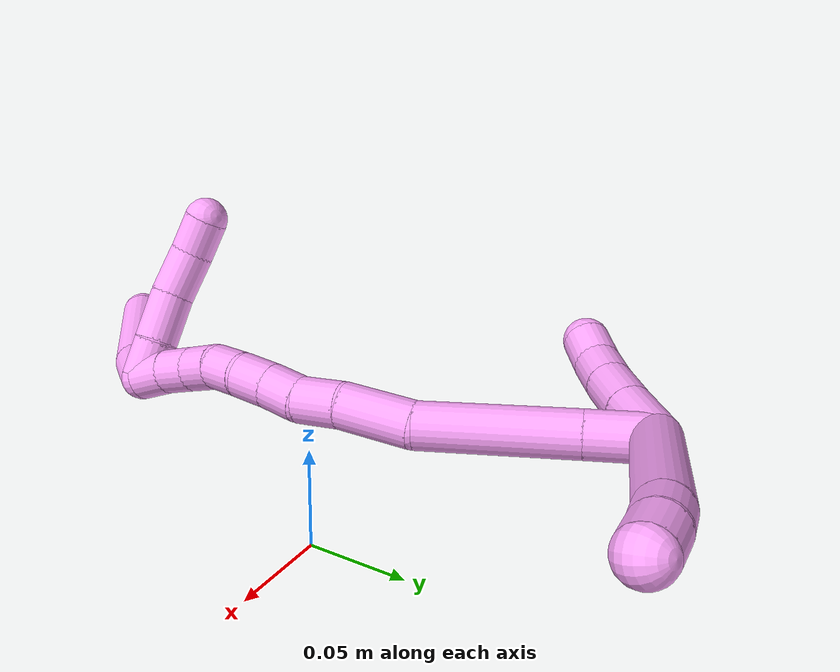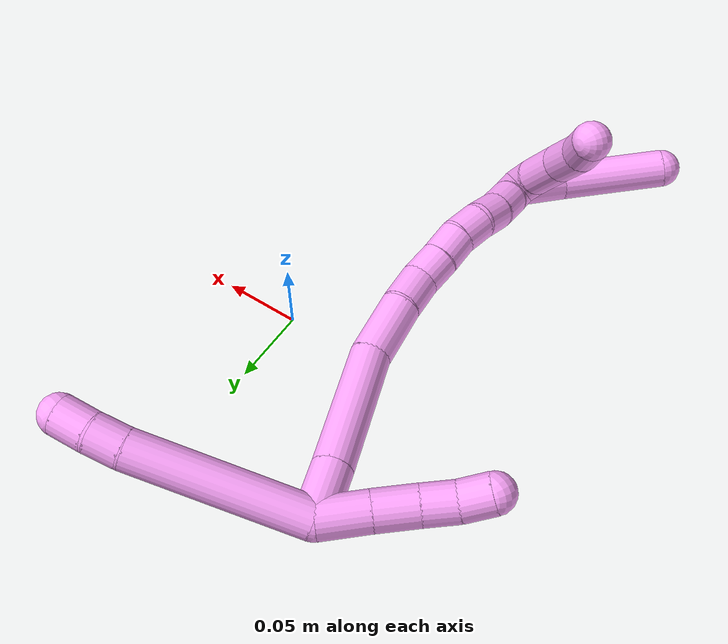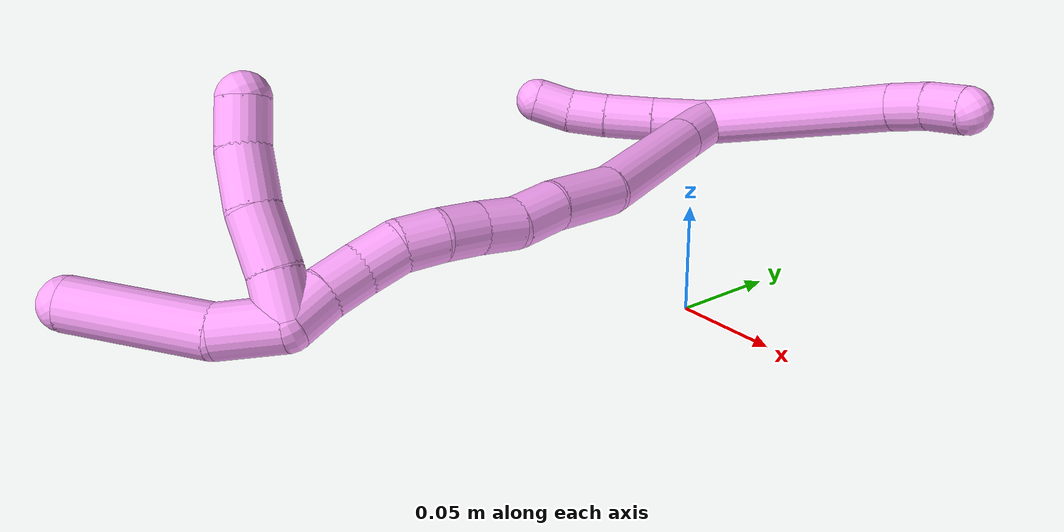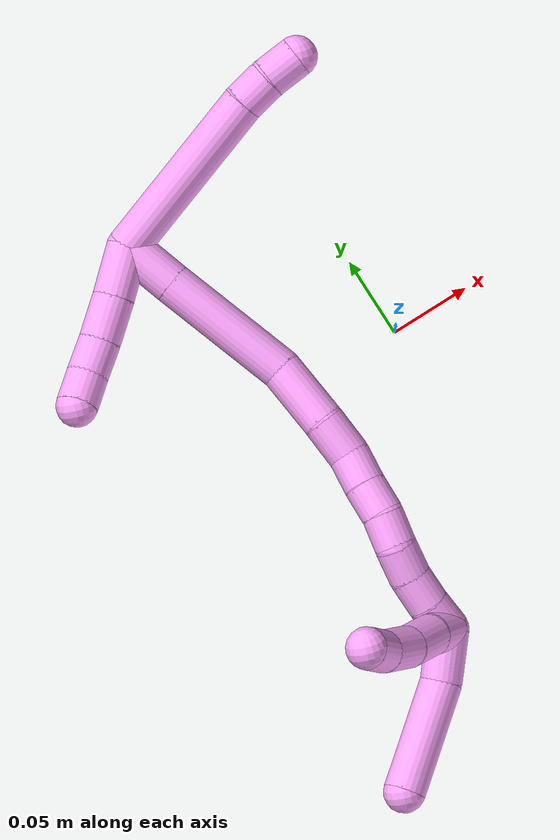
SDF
<sdf version="1.7">
 <world name="default">
  <model name="4">
   <static>0</static>
   <link name="4">
    <collision name="collision-cylinder-e_1_2_8">
     <pose>0.036591 -0.022987 0.033173 0.605985 0.736471 0.240078</pose>
     <geometry><cylinder><radius>0.0125</radius><length>0.108954</length></cylinder></geometry>
     <surface>
      <friction><ode><mu>1.16</mu><mu2>1.16</mu2><slip1>0</slip1><slip2>0</slip2></ode></friction>
      <contact><ode><kp>1e+06</kp><kd>1</kd><max_vel>0</max_vel><min_depth>0.001</min_depth></ode></contact>
     </surface>
    </collision>
    <visual name="visual-cylinder-e_1_2_8">
     <pose>0.036591 -0.022987 0.033173 0.605985 0.736471 0.240078</pose>
     <geometry><cylinder><radius>0.0125</radius><length>0.108954</length></cylinder></geometry>
     <material><ambient>1 0.65098 0.996078 1</ambient></material>
    </visual>
    <collision name="collision-cylinder-e_2_8_9">
     <pose>0.080506 -0.050621 0.071466 0.73682 0.814157 0.329863</pose>
     <geometry><cylinder><radius>0.0125</radius><length>0.020146</length></cylinder></geometry>
     <surface>
      <friction><ode><mu>1.16</mu><mu2>1.16</mu2><slip1>0</slip1><slip2>0</slip2></ode></friction>
      <contact><ode><kp>1e+06</kp><kd>1</kd><max_vel>0</max_vel><min_depth>0.001</min_depth></ode></contact>
     </surface>
    </collision>
    <visual name="visual-cylinder-e_2_8_9">
     <pose>0.080506 -0.050621 0.071466 0.73682 0.814157 0.329863</pose>
     <geometry><cylinder><radius>0.0125</radius><length>0.020146</length></cylinder></geometry>
     <material><ambient>1 0.65098 0.996078 1</ambient></material>
    </visual>
    <collision name="collision-cylinder-e_3_9_6">
     <pose>0.096355 -0.05971 0.080688 0.825449 0.953959 0.445072</pose>
     <geometry><cylinder><radius>0.0125</radius><length>0.0209</length></cylinder></geometry>
     <surface>
      <friction><ode><mu>1.16</mu><mu2>1.16</mu2><slip1>0</slip1><slip2>0</slip2></ode></friction>
      <contact><ode><kp>1e+06</kp><kd>1</kd><max_vel>0</max_vel><min_depth>0.001</min_depth></ode></contact>
     </surface>
    </collision>
    <visual name="visual-cylinder-e_3_9_6">
     <pose>0.096355 -0.05971 0.080688 0.825449 0.953959 0.445072</pose>
     <geometry><cylinder><radius>0.0125</radius><length>0.0209</length></cylinder></geometry>
     <material><ambient>1 0.65098 0.996078 1</ambient></material>
    </visual>
    <collision name="collision-cylinder-e_1_2_10">
     <pose>-0.009214 -0.000192 -0.012759 3.12654 -0.625399 -3.09504</pose>
     <geometry><cylinder><radius>0.0125</radius><length>0.03148</length></cylinder></geometry>
     <surface>
      <friction><ode><mu>1.16</mu><mu2>1.16</mu2><slip1>0</slip1><slip2>0</slip2></ode></friction>
      <contact><ode><kp>1e+06</kp><kd>1</kd><max_vel>0</max_vel><min_depth>0.001</min_depth></ode></contact>
     </surface>
    </collision>
    <visual name="visual-cylinder-e_1_2_10">
     <pose>-0.009214 -0.000192 -0.012759 3.12654 -0.625399 -3.09504</pose>
     <geometry><cylinder><radius>0.0125</radius><length>0.03148</length></cylinder></geometry>
     <material><ambient>1 0.65098 0.996078 1</ambient></material>
    </visual>
    <collision name="collision-cylinder-e_2_10_11">
     <pose>-0.026663 -0.000424 -0.036137 3.13787 -0.659621 -3.13073</pose>
     <geometry><cylinder><radius>0.0125</radius><length>0.026875</length></cylinder></geometry>
     <surface>
      <friction><ode><mu>1.16</mu><mu2>1.16</mu2><slip1>0</slip1><slip2>0</slip2></ode></friction>
      <contact><ode><kp>1e+06</kp><kd>1</kd><max_vel>0</max_vel><min_depth>0.001</min_depth></ode></contact>
     </surface>
    </collision>
    <visual name="visual-cylinder-e_2_10_11">
     <pose>-0.026663 -0.000424 -0.036137 3.13787 -0.659621 -3.13073</pose>
     <geometry><cylinder><radius>0.0125</radius><length>0.026875</length></cylinder></geometry>
     <material><ambient>1 0.65098 0.996078 1</ambient></material>
    </visual>
    <collision name="collision-cylinder-e_3_11_12">
     <pose>-0.04196 -0.00063 -0.054784 3.12085 -0.721346 -3.0866</pose>
     <geometry><cylinder><radius>0.0125</radius><length>0.021388</length></cylinder></geometry>
     <surface>
      <friction><ode><mu>1.16</mu><mu2>1.16</mu2><slip1>0</slip1><slip2>0</slip2></ode></friction>
      <contact><ode><kp>1e+06</kp><kd>1</kd><max_vel>0</max_vel><min_depth>0.001</min_depth></ode></contact>
     </surface>
    </collision>
    <visual name="visual-cylinder-e_3_11_12">
     <pose>-0.04196 -0.00063 -0.054784 3.12085 -0.721346 -3.0866</pose>
     <geometry><cylinder><radius>0.0125</radius><length>0.021388</length></cylinder></geometry>
     <material><ambient>1 0.65098 0.996078 1</ambient></material>
    </visual>
    <collision name="collision-cylinder-e_4_12_5">
     <pose>-0.056194 -0.002852 -0.069663 2.85007 -0.786729 -2.46157</pose>
     <geometry><cylinder><radius>0.0125</radius><length>0.020258</length></cylinder></geometry>
     <surface>
      <friction><ode><mu>1.16</mu><mu2>1.16</mu2><slip1>0</slip1><slip2>0</slip2></ode></friction>
      <contact><ode><kp>1e+06</kp><kd>1</kd><max_vel>0</max_vel><min_depth>0.001</min_depth></ode></contact>
     </surface>
    </collision>
    <visual name="visual-cylinder-e_4_12_5">
     <pose>-0.056194 -0.002852 -0.069663 2.85007 -0.786729 -2.46157</pose>
     <geometry><cylinder><radius>0.0125</radius><length>0.020258</length></cylinder></geometry>
     <material><ambient>1 0.65098 0.996078 1</ambient></material>
    </visual>
    <collision name="collision-cylinder-e_1_2_13">
     <pose>0.006712 -0.008104 -0.013143 2.58906 0.410034 1.26563</pose>
     <geometry><cylinder><radius>0.0125</radius><length>0.033673</length></cylinder></geometry>
     <surface>
      <friction><ode><mu>1.16</mu><mu2>1.16</mu2><slip1>0</slip1><slip2>0</slip2></ode></friction>
      <contact><ode><kp>1e+06</kp><kd>1</kd><max_vel>0</max_vel><min_depth>0.001</min_depth></ode></contact>
     </surface>
    </collision>
    <visual name="visual-cylinder-e_1_2_13">
     <pose>0.006712 -0.008104 -0.013143 2.58906 0.410034 1.26563</pose>
     <geometry><cylinder><radius>0.0125</radius><length>0.033673</length></cylinder></geometry>
     <material><ambient>1 0.65098 0.996078 1</ambient></material>
    </visual>
    <collision name="collision-cylinder-e_2_13_14">
     <pose>0.030162 -0.036209 -0.057689 2.57446 0.422507 1.26882</pose>
     <geometry><cylinder><radius>0.0125</radius><length>0.081642</length></cylinder></geometry>
     <surface>
      <friction><ode><mu>1.16</mu><mu2>1.16</mu2><slip1>0</slip1><slip2>0</slip2></ode></friction>
      <contact><ode><kp>1e+06</kp><kd>1</kd><max_vel>0</max_vel><min_depth>0.001</min_depth></ode></contact>
     </surface>
    </collision>
    <visual name="visual-cylinder-e_2_13_14">
     <pose>0.030162 -0.036209 -0.057689 2.57446 0.422507 1.26882</pose>
     <geometry><cylinder><radius>0.0125</radius><length>0.081642</length></cylinder></geometry>
     <material><ambient>1 0.65098 0.996078 1</ambient></material>
    </visual>
    <collision name="collision-cylinder-e_3_14_15">
     <pose>0.050173 -0.066463 -0.105644 2.58703 0.1665 0.570377</pose>
     <geometry><cylinder><radius>0.0125</radius><length>0.039486</length></cylinder></geometry>
     <surface>
      <friction><ode><mu>1.16</mu><mu2>1.16</mu2><slip1>0</slip1><slip2>0</slip2></ode></friction>
      <contact><ode><kp>1e+06</kp><kd>1</kd><max_vel>0</max_vel><min_depth>0.001</min_depth></ode></contact>
     </surface>
    </collision>
    <visual name="visual-cylinder-e_3_14_15">
     <pose>0.050173 -0.066463 -0.105644 2.58703 0.1665 0.570377</pose>
     <geometry><cylinder><radius>0.0125</radius><length>0.039486</length></cylinder></geometry>
     <material><ambient>1 0.65098 0.996078 1</ambient></material>
    </visual>
    <collision name="collision-cylinder-e_4_15_16">
     <pose>0.056161 -0.081485 -0.133219 2.73321 0.222437 0.989194</pose>
     <geometry><cylinder><radius>0.0125</radius><length>0.024628</length></cylinder></geometry>
     <surface>
      <friction><ode><mu>1.16</mu><mu2>1.16</mu2><slip1>0</slip1><slip2>0</slip2></ode></friction>
      <contact><ode><kp>1e+06</kp><kd>1</kd><max_vel>0</max_vel><min_depth>0.001</min_depth></ode></contact>
     </surface>
    </collision>
    <visual name="visual-cylinder-e_4_15_16">
     <pose>0.056161 -0.081485 -0.133219 2.73321 0.222437 0.989194</pose>
     <geometry><cylinder><radius>0.0125</radius><length>0.024628</length></cylinder></geometry>
     <material><ambient>1 0.65098 0.996078 1</ambient></material>
    </visual>
    <collision name="collision-cylinder-e_5_16_17">
     <pose>0.05858 -0.091024 -0.153266 2.65542 -0.029142 -0.117385</pose>
     <geometry><cylinder><radius>0.0125</radius><length>0.020423</length></cylinder></geometry>
     <surface>
      <friction><ode><mu>1.16</mu><mu2>1.16</mu2><slip1>0</slip1><slip2>0</slip2></ode></friction>
      <contact><ode><kp>1e+06</kp><kd>1</kd><max_vel>0</max_vel><min_depth>0.001</min_depth></ode></contact>
     </surface>
    </collision>
    <visual name="visual-cylinder-e_5_16_17">
     <pose>0.05858 -0.091024 -0.153266 2.65542 -0.029142 -0.117385</pose>
     <geometry><cylinder><radius>0.0125</radius><length>0.020423</length></cylinder></geometry>
     <material><ambient>1 0.65098 0.996078 1</ambient></material>
    </visual>
    <collision name="collision-cylinder-e_6_17_18">
     <pose>0.058707 -0.100571 -0.171068 2.64316 0.042462 0.166479</pose>
     <geometry><cylinder><radius>0.0125</radius><length>0.020007</length></cylinder></geometry>
     <surface>
      <friction><ode><mu>1.16</mu><mu2>1.16</mu2><slip1>0</slip1><slip2>0</slip2></ode></friction>
      <contact><ode><kp>1e+06</kp><kd>1</kd><max_vel>0</max_vel><min_depth>0.001</min_depth></ode></contact>
     </surface>
    </collision>
    <visual name="visual-cylinder-e_6_17_18">
     <pose>0.058707 -0.100571 -0.171068 2.64316 0.042462 0.166479</pose>
     <geometry><cylinder><radius>0.0125</radius><length>0.020007</length></cylinder></geometry>
     <material><ambient>1 0.65098 0.996078 1</ambient></material>
    </visual>
    <collision name="collision-cylinder-e_7_18_19">
     <pose>0.058905 -0.108411 -0.189433 2.83243 -0.022574 -0.144622</pose>
     <geometry><cylinder><radius>0.0125</radius><length>0.020133</length></cylinder></geometry>
     <surface>
      <friction><ode><mu>1.16</mu><mu2>1.16</mu2><slip1>0</slip1><slip2>0</slip2></ode></friction>
      <contact><ode><kp>1e+06</kp><kd>1</kd><max_vel>0</max_vel><min_depth>0.001</min_depth></ode></contact>
     </surface>
    </collision>
    <visual name="visual-cylinder-e_7_18_19">
     <pose>0.058905 -0.108411 -0.189433 2.83243 -0.022574 -0.144622</pose>
     <geometry><cylinder><radius>0.0125</radius><length>0.020133</length></cylinder></geometry>
     <material><ambient>1 0.65098 0.996078 1</ambient></material>
    </visual>
    <collision name="collision-cylinder-e_8_19_20">
     <pose>0.060304 -0.112368 -0.208848 3.0508 0.163364 2.12835</pose>
     <geometry><cylinder><radius>0.0125</radius><length>0.020004</length></cylinder></geometry>
     <surface>
      <friction><ode><mu>1.16</mu><mu2>1.16</mu2><slip1>0</slip1><slip2>0</slip2></ode></friction>
      <contact><ode><kp>1e+06</kp><kd>1</kd><max_vel>0</max_vel><min_depth>0.001</min_depth></ode></contact>
     </surface>
    </collision>
    <visual name="visual-cylinder-e_8_19_20">
     <pose>0.060304 -0.112368 -0.208848 3.0508 0.163364 2.12835</pose>
     <geometry><cylinder><radius>0.0125</radius><length>0.020004</length></cylinder></geometry>
     <material><ambient>1 0.65098 0.996078 1</ambient></material>
    </visual>
    <collision name="collision-cylinder-e_9_20_21">
     <pose>0.064629 -0.115088 -0.228132 2.95089 0.273115 1.92548</pose>
     <geometry><cylinder><radius>0.0125</radius><length>0.020003</length></cylinder></geometry>
     <surface>
      <friction><ode><mu>1.16</mu><mu2>1.16</mu2><slip1>0</slip1><slip2>0</slip2></ode></friction>
      <contact><ode><kp>1e+06</kp><kd>1</kd><max_vel>0</max_vel><min_depth>0.001</min_depth></ode></contact>
     </surface>
    </collision>
    <visual name="visual-cylinder-e_9_20_21">
     <pose>0.064629 -0.115088 -0.228132 2.95089 0.273115 1.92548</pose>
     <geometry><cylinder><radius>0.0125</radius><length>0.020003</length></cylinder></geometry>
     <material><ambient>1 0.65098 0.996078 1</ambient></material>
    </visual>
    <collision name="collision-cylinder-e_10_21_1">
     <pose>0.071084 -0.118272 -0.246757 2.99453 0.385143 2.41917</pose>
     <geometry><cylinder><radius>0.0125</radius><length>0.020002</length></cylinder></geometry>
     <surface>
      <friction><ode><mu>1.16</mu><mu2>1.16</mu2><slip1>0</slip1><slip2>0</slip2></ode></friction>
      <contact><ode><kp>1e+06</kp><kd>1</kd><max_vel>0</max_vel><min_depth>0.001</min_depth></ode></contact>
     </surface>
    </collision>
    <visual name="visual-cylinder-e_10_21_1">
     <pose>0.071084 -0.118272 -0.246757 2.99453 0.385143 2.41917</pose>
     <geometry><cylinder><radius>0.0125</radius><length>0.020002</length></cylinder></geometry>
     <material><ambient>1 0.65098 0.996078 1</ambient></material>
    </visual>
    <collision name="collision-cylinder-e_1_1_22">
     <pose>0.068126 -0.119366 -0.270276 -3.12318 -0.437595 3.05884</pose>
     <geometry><cylinder><radius>0.0125</radius><length>0.031693</length></cylinder></geometry>
     <surface>
      <friction><ode><mu>1.16</mu><mu2>1.16</mu2><slip1>0</slip1><slip2>0</slip2></ode></friction>
      <contact><ode><kp>1e+06</kp><kd>1</kd><max_vel>0</max_vel><min_depth>0.001</min_depth></ode></contact>
     </surface>
    </collision>
    <visual name="visual-cylinder-e_1_1_22">
     <pose>0.068126 -0.119366 -0.270276 -3.12318 -0.437595 3.05884</pose>
     <geometry><cylinder><radius>0.0125</radius><length>0.031693</length></cylinder></geometry>
     <material><ambient>1 0.65098 0.996078 1</ambient></material>
    </visual>
    <collision name="collision-cylinder-e_2_22_4">
     <pose>0.038864 -0.120577 -0.310239 3.08405 -0.721015 -2.98921</pose>
     <geometry><cylinder><radius>0.0125</radius><length>0.068307</length></cylinder></geometry>
     <surface>
      <friction><ode><mu>1.16</mu><mu2>1.16</mu2><slip1>0</slip1><slip2>0</slip2></ode></friction>
      <contact><ode><kp>1e+06</kp><kd>1</kd><max_vel>0</max_vel><min_depth>0.001</min_depth></ode></contact>
     </surface>
    </collision>
    <visual name="visual-cylinder-e_2_22_4">
     <pose>0.038864 -0.120577 -0.310239 3.08405 -0.721015 -2.98921</pose>
     <geometry><cylinder><radius>0.0125</radius><length>0.068307</length></cylinder></geometry>
     <material><ambient>1 0.65098 0.996078 1</ambient></material>
    </visual>
    <collision name="collision-cylinder-e_1_1_23">
     <pose>0.065208 -0.124839 -0.253586 1.14874 -1.03568 -0.706441</pose>
     <geometry><cylinder><radius>0.0125</radius><length>0.022397</length></cylinder></geometry>
     <surface>
      <friction><ode><mu>1.16</mu><mu2>1.16</mu2><slip1>0</slip1><slip2>0</slip2></ode></friction>
      <contact><ode><kp>1e+06</kp><kd>1</kd><max_vel>0</max_vel><min_depth>0.001</min_depth></ode></contact>
     </surface>
    </collision>
    <visual name="visual-cylinder-e_1_1_23">
     <pose>0.065208 -0.124839 -0.253586 1.14874 -1.03568 -0.706441</pose>
     <geometry><cylinder><radius>0.0125</radius><length>0.022397</length></cylinder></geometry>
     <material><ambient>1 0.65098 0.996078 1</ambient></material>
    </visual>
    <collision name="collision-cylinder-e_2_23_24">
     <pose>0.042845 -0.136274 -0.249495 1.2964 -1.10078 -0.87011</pose>
     <geometry><cylinder><radius>0.0125</radius><length>0.028557</length></cylinder></geometry>
     <surface>
      <friction><ode><mu>1.16</mu><mu2>1.16</mu2><slip1>0</slip1><slip2>0</slip2></ode></friction>
      <contact><ode><kp>1e+06</kp><kd>1</kd><max_vel>0</max_vel><min_depth>0.001</min_depth></ode></contact>
     </surface>
    </collision>
    <visual name="visual-cylinder-e_2_23_24">
     <pose>0.042845 -0.136274 -0.249495 1.2964 -1.10078 -0.87011</pose>
     <geometry><cylinder><radius>0.0125</radius><length>0.028557</length></cylinder></geometry>
     <material><ambient>1 0.65098 0.996078 1</ambient></material>
    </visual>
    <collision name="collision-cylinder-e_3_24_25">
     <pose>0.018093 -0.147841 -0.244069 0.968393 -1.07616 -0.608327</pose>
     <geometry><cylinder><radius>0.0125</radius><length>0.027316</length></cylinder></geometry>
     <surface>
      <friction><ode><mu>1.16</mu><mu2>1.16</mu2><slip1>0</slip1><slip2>0</slip2></ode></friction>
      <contact><ode><kp>1e+06</kp><kd>1</kd><max_vel>0</max_vel><min_depth>0.001</min_depth></ode></contact>
     </surface>
    </collision>
    <visual name="visual-cylinder-e_3_24_25">
     <pose>0.018093 -0.147841 -0.244069 0.968393 -1.07616 -0.608327</pose>
     <geometry><cylinder><radius>0.0125</radius><length>0.027316</length></cylinder></geometry>
     <material><ambient>1 0.65098 0.996078 1</ambient></material>
    </visual>
    <collision name="collision-cylinder-e_4_25_3">
     <pose>-0.00225 -0.15831 -0.235652 0.824277 -0.872573 -0.402159</pose>
     <geometry><cylinder><radius>0.0125</radius><length>0.02173</length></cylinder></geometry>
     <surface>
      <friction><ode><mu>1.16</mu><mu2>1.16</mu2><slip1>0</slip1><slip2>0</slip2></ode></friction>
      <contact><ode><kp>1e+06</kp><kd>1</kd><max_vel>0</max_vel><min_depth>0.001</min_depth></ode></contact>
     </surface>
    </collision>
    <visual name="visual-cylinder-e_4_25_3">
     <pose>-0.00225 -0.15831 -0.235652 0.824277 -0.872573 -0.402159</pose>
     <geometry><cylinder><radius>0.0125</radius><length>0.02173</length></cylinder></geometry>
     <material><ambient>1 0.65098 0.996078 1</ambient></material>
    </visual>
    <collision name="collision-sphere-3">
     <pose>-0.010572 -0.163437 -0.230909 0 -0 0</pose>
     <geometry><sphere><radius>0.0125</radius></sphere></geometry>
     <surface>
      <friction><ode><mu>1.16</mu><mu2>1.16</mu2><slip1>0</slip1><slip2>0</slip2></ode></friction>
      <contact><ode><kp>1e+06</kp><kd>1</kd><max_vel>0</max_vel><min_depth>0.001</min_depth></ode></contact>
     </surface>
    </collision>
    <visual name="visual-sphere-3">
     <pose>-0.010572 -0.163437 -0.230909 0 -0 0</pose>
     <geometry><sphere><radius>0.0125</radius></sphere></geometry>
     <material><ambient>1 0.65098 0.996078 1</ambient></material>
    </visual>
    <collision name="collision-sphere-25">
     <pose>0.006073 -0.153183 -0.240395 0 -0 0</pose>
     <geometry><sphere><radius>0.0125</radius></sphere></geometry>
     <surface>
      <friction><ode><mu>1.16</mu><mu2>1.16</mu2><slip1>0</slip1><slip2>0</slip2></ode></friction>
      <contact><ode><kp>1e+06</kp><kd>1</kd><max_vel>0</max_vel><min_depth>0.001</min_depth></ode></contact>
     </surface>
    </collision>
    <visual name="visual-sphere-25">
     <pose>0.006073 -0.153183 -0.240395 0 -0 0</pose>
     <geometry><sphere><radius>0.0125</radius></sphere></geometry>
     <material><ambient>1 0.65098 0.996078 1</ambient></material>
    </visual>
    <collision name="collision-sphere-24">
     <pose>0.030114 -0.142498 -0.247742 0 -0 0</pose>
     <geometry><sphere><radius>0.0125</radius></sphere></geometry>
     <surface>
      <friction><ode><mu>1.16</mu><mu2>1.16</mu2><slip1>0</slip1><slip2>0</slip2></ode></friction>
      <contact><ode><kp>1e+06</kp><kd>1</kd><max_vel>0</max_vel><min_depth>0.001</min_depth></ode></contact>
     </surface>
    </collision>
    <visual name="visual-sphere-24">
     <pose>0.030114 -0.142498 -0.247742 0 -0 0</pose>
     <geometry><sphere><radius>0.0125</radius></sphere></geometry>
     <material><ambient>1 0.65098 0.996078 1</ambient></material>
    </visual>
    <collision name="collision-sphere-23">
     <pose>0.055575 -0.130049 -0.251247 0 -0 0</pose>
     <geometry><sphere><radius>0.0125</radius></sphere></geometry>
     <surface>
      <friction><ode><mu>1.16</mu><mu2>1.16</mu2><slip1>0</slip1><slip2>0</slip2></ode></friction>
      <contact><ode><kp>1e+06</kp><kd>1</kd><max_vel>0</max_vel><min_depth>0.001</min_depth></ode></contact>
     </surface>
    </collision>
    <visual name="visual-sphere-23">
     <pose>0.055575 -0.130049 -0.251247 0 -0 0</pose>
     <geometry><sphere><radius>0.0125</radius></sphere></geometry>
     <material><ambient>1 0.65098 0.996078 1</ambient></material>
    </visual>
    <collision name="collision-sphere-4">
     <pose>0.016318 -0.122052 -0.33585 0 -0 0</pose>
     <geometry><sphere><radius>0.0125</radius></sphere></geometry>
     <surface>
      <friction><ode><mu>1.16</mu><mu2>1.16</mu2><slip1>0</slip1><slip2>0</slip2></ode></friction>
      <contact><ode><kp>1e+06</kp><kd>1</kd><max_vel>0</max_vel><min_depth>0.001</min_depth></ode></contact>
     </surface>
    </collision>
    <visual name="visual-sphere-4">
     <pose>0.016318 -0.122052 -0.33585 0 -0 0</pose>
     <geometry><sphere><radius>0.0125</radius></sphere></geometry>
     <material><ambient>1 0.65098 0.996078 1</ambient></material>
    </visual>
    <collision name="collision-sphere-22">
     <pose>0.061411 -0.119101 -0.284627 0 -0 0</pose>
     <geometry><sphere><radius>0.0125</radius></sphere></geometry>
     <surface>
      <friction><ode><mu>1.16</mu><mu2>1.16</mu2><slip1>0</slip1><slip2>0</slip2></ode></friction>
      <contact><ode><kp>1e+06</kp><kd>1</kd><max_vel>0</max_vel><min_depth>0.001</min_depth></ode></contact>
     </surface>
    </collision>
    <visual name="visual-sphere-22">
     <pose>0.061411 -0.119101 -0.284627 0 -0 0</pose>
     <geometry><sphere><radius>0.0125</radius></sphere></geometry>
     <material><ambient>1 0.65098 0.996078 1</ambient></material>
    </visual>
    <collision name="collision-sphere-1">
     <pose>0.074841 -0.11963 -0.255925 0 -0 0</pose>
     <geometry><sphere><radius>0.0125</radius></sphere></geometry>
     <surface>
      <friction><ode><mu>1.16</mu><mu2>1.16</mu2><slip1>0</slip1><slip2>0</slip2></ode></friction>
      <contact><ode><kp>1e+06</kp><kd>1</kd><max_vel>0</max_vel><min_depth>0.001</min_depth></ode></contact>
     </surface>
    </collision>
    <visual name="visual-sphere-1">
     <pose>0.074841 -0.11963 -0.255925 0 -0 0</pose>
     <geometry><sphere><radius>0.0125</radius></sphere></geometry>
     <material><ambient>1 0.65098 0.996078 1</ambient></material>
    </visual>
    <collision name="collision-sphere-21">
     <pose>0.067326 -0.116913 -0.237588 0 -0 0</pose>
     <geometry><sphere><radius>0.0125</radius></sphere></geometry>
     <surface>
      <friction><ode><mu>1.16</mu><mu2>1.16</mu2><slip1>0</slip1><slip2>0</slip2></ode></friction>
      <contact><ode><kp>1e+06</kp><kd>1</kd><max_vel>0</max_vel><min_depth>0.001</min_depth></ode></contact>
     </surface>
    </collision>
    <visual name="visual-sphere-21">
     <pose>0.067326 -0.116913 -0.237588 0 -0 0</pose>
     <geometry><sphere><radius>0.0125</radius></sphere></geometry>
     <material><ambient>1 0.65098 0.996078 1</ambient></material>
    </visual>
    <collision name="collision-sphere-11">
     <pose>-0.034898 -0.000463 -0.046755 0 -0 0</pose>
     <geometry><sphere><radius>0.0125</radius></sphere></geometry>
     <surface>
      <friction><ode><mu>1.16</mu><mu2>1.16</mu2><slip1>0</slip1><slip2>0</slip2></ode></friction>
      <contact><ode><kp>1e+06</kp><kd>1</kd><max_vel>0</max_vel><min_depth>0.001</min_depth></ode></contact>
     </surface>
    </collision>
    <visual name="visual-sphere-11">
     <pose>-0.034898 -0.000463 -0.046755 0 -0 0</pose>
     <geometry><sphere><radius>0.0125</radius></sphere></geometry>
     <material><ambient>1 0.65098 0.996078 1</ambient></material>
    </visual>
    <collision name="collision-sphere-10">
     <pose>-0.018429 -0.000384 -0.025519 0 -0 0</pose>
     <geometry><sphere><radius>0.0125</radius></sphere></geometry>
     <surface>
      <friction><ode><mu>1.16</mu><mu2>1.16</mu2><slip1>0</slip1><slip2>0</slip2></ode></friction>
      <contact><ode><kp>1e+06</kp><kd>1</kd><max_vel>0</max_vel><min_depth>0.001</min_depth></ode></contact>
     </surface>
    </collision>
    <visual name="visual-sphere-10">
     <pose>-0.018429 -0.000384 -0.025519 0 -0 0</pose>
     <geometry><sphere><radius>0.0125</radius></sphere></geometry>
     <material><ambient>1 0.65098 0.996078 1</ambient></material>
    </visual>
    <collision name="collision-sphere-6">
     <pose>0.10488 -0.064152 0.084787 0 -0 0</pose>
     <geometry><sphere><radius>0.0125</radius></sphere></geometry>
     <surface>
      <friction><ode><mu>1.16</mu><mu2>1.16</mu2><slip1>0</slip1><slip2>0</slip2></ode></friction>
      <contact><ode><kp>1e+06</kp><kd>1</kd><max_vel>0</max_vel><min_depth>0.001</min_depth></ode></contact>
     </surface>
    </collision>
    <visual name="visual-sphere-6">
     <pose>0.10488 -0.064152 0.084787 0 -0 0</pose>
     <geometry><sphere><radius>0.0125</radius></sphere></geometry>
     <material><ambient>1 0.65098 0.996078 1</ambient></material>
    </visual>
    <collision name="collision-sphere-9">
     <pose>0.087831 -0.055267 0.076588 0 -0 0</pose>
     <geometry><sphere><radius>0.0125</radius></sphere></geometry>
     <surface>
      <friction><ode><mu>1.16</mu><mu2>1.16</mu2><slip1>0</slip1><slip2>0</slip2></ode></friction>
      <contact><ode><kp>1e+06</kp><kd>1</kd><max_vel>0</max_vel><min_depth>0.001</min_depth></ode></contact>
     </surface>
    </collision>
    <visual name="visual-sphere-9">
     <pose>0.087831 -0.055267 0.076588 0 -0 0</pose>
     <geometry><sphere><radius>0.0125</radius></sphere></geometry>
     <material><ambient>1 0.65098 0.996078 1</ambient></material>
    </visual>
    <collision name="collision-sphere-2">
     <geometry><sphere><radius>0.0125</radius></sphere></geometry>
     <surface>
      <friction><ode><mu>1.16</mu><mu2>1.16</mu2><slip1>0</slip1><slip2>0</slip2></ode></friction>
      <contact><ode><kp>1e+06</kp><kd>1</kd><max_vel>0</max_vel><min_depth>0.001</min_depth></ode></contact>
     </surface>
    </collision>
    <visual name="visual-sphere-2">
     <geometry><sphere><radius>0.0125</radius></sphere></geometry>
     <material><ambient>1 0.65098 0.996078 1</ambient></material>
    </visual>
    <collision name="collision-sphere-19">
     <pose>0.058678 -0.111473 -0.19902 0 -0 0</pose>
     <geometry><sphere><radius>0.0125</radius></sphere></geometry>
     <surface>
      <friction><ode><mu>1.16</mu><mu2>1.16</mu2><slip1>0</slip1><slip2>0</slip2></ode></friction>
      <contact><ode><kp>1e+06</kp><kd>1</kd><max_vel>0</max_vel><min_depth>0.001</min_depth></ode></contact>
     </surface>
    </collision>
    <visual name="visual-sphere-19">
     <pose>0.058678 -0.111473 -0.19902 0 -0 0</pose>
     <geometry><sphere><radius>0.0125</radius></sphere></geometry>
     <material><ambient>1 0.65098 0.996078 1</ambient></material>
    </visual>
    <collision name="collision-sphere-8">
     <pose>0.073182 -0.045975 0.066345 0 -0 0</pose>
     <geometry><sphere><radius>0.0125</radius></sphere></geometry>
     <surface>
      <friction><ode><mu>1.16</mu><mu2>1.16</mu2><slip1>0</slip1><slip2>0</slip2></ode></friction>
      <contact><ode><kp>1e+06</kp><kd>1</kd><max_vel>0</max_vel><min_depth>0.001</min_depth></ode></contact>
     </surface>
    </collision>
    <visual name="visual-sphere-8">
     <pose>0.073182 -0.045975 0.066345 0 -0 0</pose>
     <geometry><sphere><radius>0.0125</radius></sphere></geometry>
     <material><ambient>1 0.65098 0.996078 1</ambient></material>
    </visual>
    <collision name="collision-sphere-12">
     <pose>-0.049022 -0.000796 -0.062812 0 -0 0</pose>
     <geometry><sphere><radius>0.0125</radius></sphere></geometry>
     <surface>
      <friction><ode><mu>1.16</mu><mu2>1.16</mu2><slip1>0</slip1><slip2>0</slip2></ode></friction>
      <contact><ode><kp>1e+06</kp><kd>1</kd><max_vel>0</max_vel><min_depth>0.001</min_depth></ode></contact>
     </surface>
    </collision>
    <visual name="visual-sphere-12">
     <pose>-0.049022 -0.000796 -0.062812 0 -0 0</pose>
     <geometry><sphere><radius>0.0125</radius></sphere></geometry>
     <material><ambient>1 0.65098 0.996078 1</ambient></material>
    </visual>
    <collision name="collision-sphere-5">
     <pose>-0.063366 -0.004908 -0.076514 0 -0 0</pose>
     <geometry><sphere><radius>0.0125</radius></sphere></geometry>
     <surface>
      <friction><ode><mu>1.16</mu><mu2>1.16</mu2><slip1>0</slip1><slip2>0</slip2></ode></friction>
      <contact><ode><kp>1e+06</kp><kd>1</kd><max_vel>0</max_vel><min_depth>0.001</min_depth></ode></contact>
     </surface>
    </collision>
    <visual name="visual-sphere-5">
     <pose>-0.063366 -0.004908 -0.076514 0 -0 0</pose>
     <geometry><sphere><radius>0.0125</radius></sphere></geometry>
     <material><ambient>1 0.65098 0.996078 1</ambient></material>
    </visual>
    <collision name="collision-sphere-13">
     <pose>0.013424 -0.016208 -0.026287 0 -0 0</pose>
     <geometry><sphere><radius>0.0125</radius></sphere></geometry>
     <surface>
      <friction><ode><mu>1.16</mu><mu2>1.16</mu2><slip1>0</slip1><slip2>0</slip2></ode></friction>
      <contact><ode><kp>1e+06</kp><kd>1</kd><max_vel>0</max_vel><min_depth>0.001</min_depth></ode></contact>
     </surface>
    </collision>
    <visual name="visual-sphere-13">
     <pose>0.013424 -0.016208 -0.026287 0 -0 0</pose>
     <geometry><sphere><radius>0.0125</radius></sphere></geometry>
     <material><ambient>1 0.65098 0.996078 1</ambient></material>
    </visual>
    <collision name="collision-sphere-14">
     <pose>0.046901 -0.056211 -0.089092 0 -0 0</pose>
     <geometry><sphere><radius>0.0125</radius></sphere></geometry>
     <surface>
      <friction><ode><mu>1.16</mu><mu2>1.16</mu2><slip1>0</slip1><slip2>0</slip2></ode></friction>
      <contact><ode><kp>1e+06</kp><kd>1</kd><max_vel>0</max_vel><min_depth>0.001</min_depth></ode></contact>
     </surface>
    </collision>
    <visual name="visual-sphere-14">
     <pose>0.046901 -0.056211 -0.089092 0 -0 0</pose>
     <geometry><sphere><radius>0.0125</radius></sphere></geometry>
     <material><ambient>1 0.65098 0.996078 1</ambient></material>
    </visual>
    <collision name="collision-sphere-15">
     <pose>0.053445 -0.076715 -0.122196 0 -0 0</pose>
     <geometry><sphere><radius>0.0125</radius></sphere></geometry>
     <surface>
      <friction><ode><mu>1.16</mu><mu2>1.16</mu2><slip1>0</slip1><slip2>0</slip2></ode></friction>
      <contact><ode><kp>1e+06</kp><kd>1</kd><max_vel>0</max_vel><min_depth>0.001</min_depth></ode></contact>
     </surface>
    </collision>
    <visual name="visual-sphere-15">
     <pose>0.053445 -0.076715 -0.122196 0 -0 0</pose>
     <geometry><sphere><radius>0.0125</radius></sphere></geometry>
     <material><ambient>1 0.65098 0.996078 1</ambient></material>
    </visual>
    <collision name="collision-sphere-16">
     <pose>0.058878 -0.086255 -0.144242 0 -0 0</pose>
     <geometry><sphere><radius>0.0125</radius></sphere></geometry>
     <surface>
      <friction><ode><mu>1.16</mu><mu2>1.16</mu2><slip1>0</slip1><slip2>0</slip2></ode></friction>
      <contact><ode><kp>1e+06</kp><kd>1</kd><max_vel>0</max_vel><min_depth>0.001</min_depth></ode></contact>
     </surface>
    </collision>
    <visual name="visual-sphere-16">
     <pose>0.058878 -0.086255 -0.144242 0 -0 0</pose>
     <geometry><sphere><radius>0.0125</radius></sphere></geometry>
     <material><ambient>1 0.65098 0.996078 1</ambient></material>
    </visual>
    <collision name="collision-sphere-17">
     <pose>0.058283 -0.095793 -0.16229 0 -0 0</pose>
     <geometry><sphere><radius>0.0125</radius></sphere></geometry>
     <surface>
      <friction><ode><mu>1.16</mu><mu2>1.16</mu2><slip1>0</slip1><slip2>0</slip2></ode></friction>
      <contact><ode><kp>1e+06</kp><kd>1</kd><max_vel>0</max_vel><min_depth>0.001</min_depth></ode></contact>
     </surface>
    </collision>
    <visual name="visual-sphere-17">
     <pose>0.058283 -0.095793 -0.16229 0 -0 0</pose>
     <geometry><sphere><radius>0.0125</radius></sphere></geometry>
     <material><ambient>1 0.65098 0.996078 1</ambient></material>
    </visual>
    <collision name="collision-sphere-18">
     <pose>0.059132 -0.105349 -0.179847 0 -0 0</pose>
     <geometry><sphere><radius>0.0125</radius></sphere></geometry>
     <surface>
      <friction><ode><mu>1.16</mu><mu2>1.16</mu2><slip1>0</slip1><slip2>0</slip2></ode></friction>
      <contact><ode><kp>1e+06</kp><kd>1</kd><max_vel>0</max_vel><min_depth>0.001</min_depth></ode></contact>
     </surface>
    </collision>
    <visual name="visual-sphere-18">
     <pose>0.059132 -0.105349 -0.179847 0 -0 0</pose>
     <geometry><sphere><radius>0.0125</radius></sphere></geometry>
     <material><ambient>1 0.65098 0.996078 1</ambient></material>
    </visual>
    <collision name="collision-sphere-20">
     <pose>0.061931 -0.113262 -0.218676 0 -0 0</pose>
     <geometry><sphere><radius>0.0125</radius></sphere></geometry>
     <surface>
      <friction><ode><mu>1.16</mu><mu2>1.16</mu2><slip1>0</slip1><slip2>0</slip2></ode></friction>
      <contact><ode><kp>1e+06</kp><kd>1</kd><max_vel>0</max_vel><min_depth>0.001</min_depth></ode></contact>
     </surface>
    </collision>
    <visual name="visual-sphere-20">
     <pose>0.061931 -0.113262 -0.218676 0 -0 0</pose>
     <geometry><sphere><radius>0.0125</radius></sphere></geometry>
     <material><ambient>1 0.65098 0.996078 1</ambient></material>
    </visual>
    <inertial>
     <pose>0.034738 -0.069168 -0.117617 0 -0 0</pose>
     <mass>0.75</mass>
     <inertia><ixx>0.000143</ixx><ixy>0</ixy><ixz>0</ixz><iyy>0.000194</iyy><iyz>0</iyz><izz>-4e-06</izz></inertia>
    </inertial>
   </link>
   <pose>-0.108759 0.122267 0.041984 -1.17317 0.493101 -0.108197</pose>
  </model>
 </world>
</sdf>
